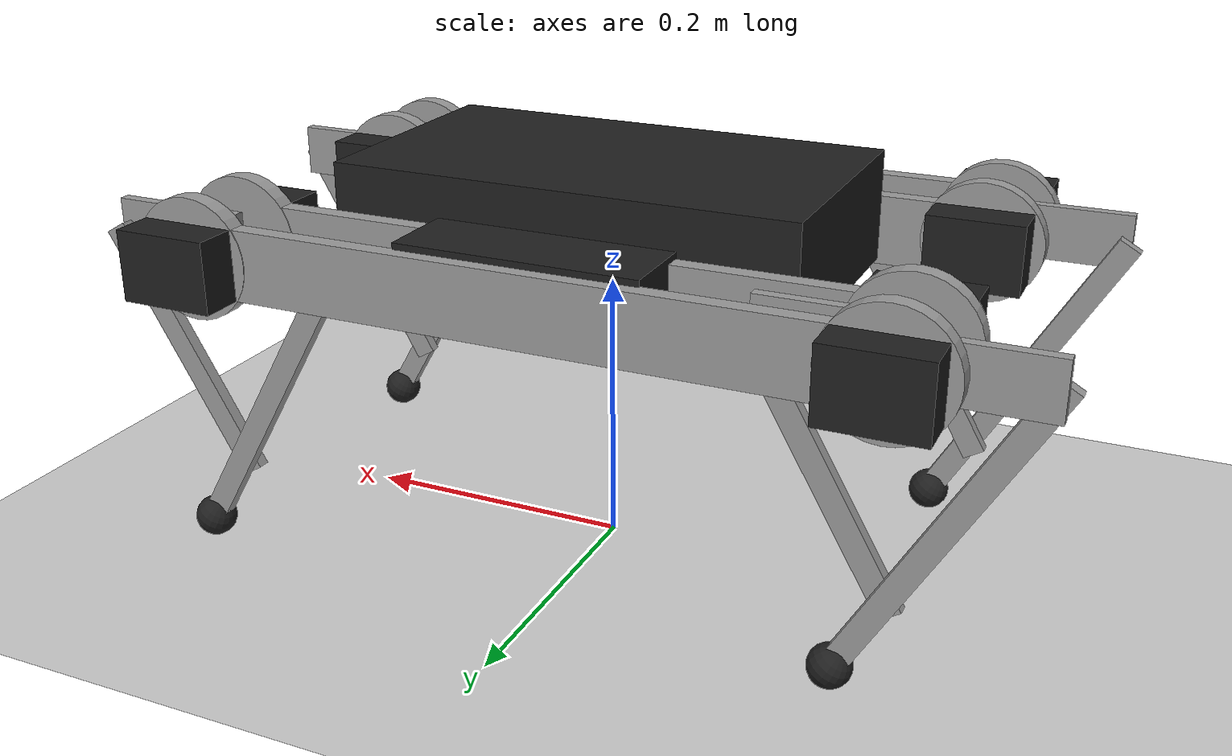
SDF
<?xml version="1.0" encoding="UTF-8"?>
<sdf version='1.6'>

  <world name='default'>

    <plugin filename='libignition-gazebo-physics-system.so' name='ignition::gazebo::systems::Physics'>
    </plugin>
    <plugin filename='libignition-gazebo-scene-broadcaster-system.so' name='ignition::gazebo::systems::SceneBroadcaster'>
    </plugin>
    <plugin filename='libignition-gazebo-user-commands-system.so' name='ignition::gazebo::systems::UserCommands'>
    </plugin>

    <scene>
      <ambient>0.8 0.8 0.8 1.0</ambient>
      <background>0.34 0.39 0.43 1.0</background>
      <grid>true</grid>
      <origin_visual>false</origin_visual>
    </scene>

    <light type="directional" name="sun">
      <cast_shadows>true</cast_shadows>
      <pose>0 0 10 0 0 0</pose>
      <diffuse>0.8 0.8 0.8 1</diffuse>
      <specular>0.2 0.2 0.2 1</specular>
      <attenuation>
        <range>1000</range>
        <constant>0.9</constant>
        <linear>0.01</linear>
        <quadratic>0.001</quadratic>
      </attenuation>
      <direction>-0.5 0.1 -0.9</direction>
    </light>

    <gui fullscreen='0'>
      <!-- 3D scene -->
      <plugin filename="GzScene3D" name="3D View">
        <ignition-gui>
          <title>3D View</title>
          <property type="bool" key="showTitleBar">false</property>
          <property type="string" key="state">docked</property>
        </ignition-gui>
        <engine>ogre</engine>
        <scene>scene</scene>
        <ambient_light>1.0 1.0 1.0</ambient_light>
        <background_color>0.8 0.8 0.8</background_color>
        <camera_pose>-6 0 6 0 0.5 0</camera_pose>
      </plugin>
      <!-- World control -->
      <plugin filename='WorldControl' name='World control'>
        <ignition-gui>
          <title>World control</title>
          <property type='bool' key='showTitleBar'>false</property>
          <property type='bool' key='resizable'>false</property>
          <property type='double' key='height'>72</property>
          <property type='double' key='width'>121</property>
          <property type='double' key='z'>1</property>
          <property type='string' key='state'>floating</property>
          <anchors target='3D View'>
            <line own='left' target='left'/>
            <line own='bottom' target='bottom'/>
          </anchors>
        </ignition-gui>
        <play_pause>true</play_pause>
        <step>true</step>
        <start_paused>true</start_paused>
        <service>/world/default/control</service>
        <stats_topic>/world/default/stats</stats_topic>
      </plugin>
      <!-- World statistics -->
      <plugin filename="WorldStats" name="World stats">
        <ignition-gui>
          <title>World stats</title>
          <property type="bool" key="showTitleBar">false</property>
          <property type="bool" key="resizable">false</property>
          <property type="double" key="height">110</property>
          <property type="double" key="width">290</property>
          <property type="double" key="z">1</property>
          <property type="string" key="state">floating</property>
          <anchors target="3D View">
            <line own="right" target="right"/>
            <line own="bottom" target="bottom"/>
          </anchors>
        </ignition-gui>
        <sim_time>true</sim_time>
        <real_time>true</real_time>
        <real_time_factor>true</real_time_factor>
        <iterations>true</iterations>
        <topic>/world/default/stats</topic>
      </plugin>
  </gui>

  <model name="ground_plane">
    <static>true</static>
    <link name="link">
      <collision name="collision">
        <geometry>
          <plane>
            <normal>0 0 1</normal>
          </plane>
        </geometry>
      </collision>
      <visual name="visual">
        <geometry>
          <plane>
            <normal>0 0 1</normal>
            <size>100 100</size>
          </plane>
        </geometry>
        <material>
          <ambient>0.8 0.8 0.8 1</ambient>
          <diffuse>0.8 0.8 0.8 1</diffuse>
          <specular>0.8 0.8 0.8 1</specular>
        </material>
      </visual>
    </link>
  </model>

  <include>
    <pose>0 0 0.25 0 0 0</pose>
    <uri>Minitaur</uri>
  </include>

</world>
</sdf>
